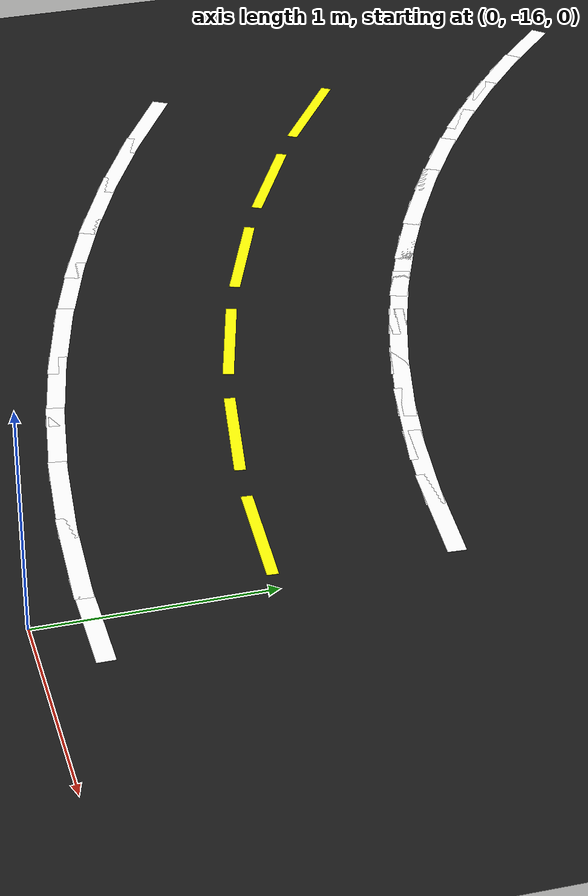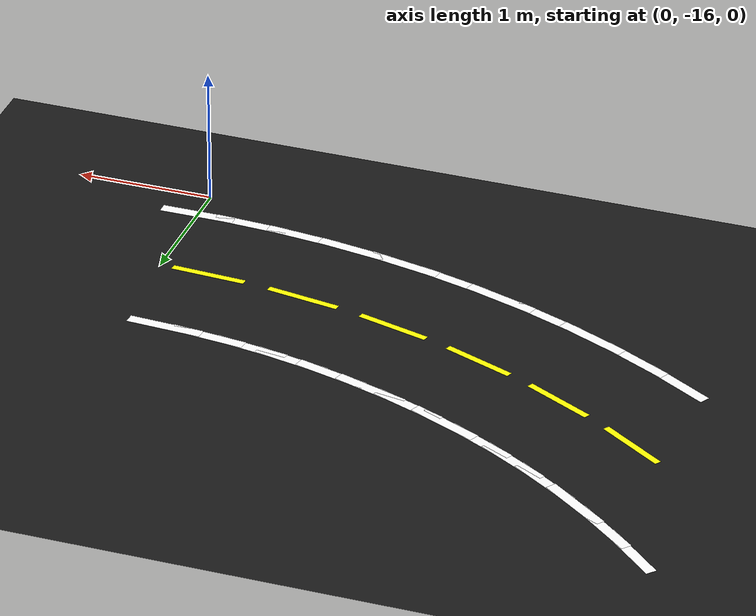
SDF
<sdf version="1.6">
 <world name="lane_world">
  <model name="ground">
   <static>true</static>
   <link name="link">
    <visual name="v">
     <geometry><plane><normal>0 0 1</normal><size>80 80</size></plane></geometry>
     <material><ambient>0.10 0.10 0.10 1</ambient><diffuse>0.10 0.10 0.10 1</diffuse></material>
    </visual>
    <collision name="c"><geometry><plane><normal>0 0 1</normal><size>80 80</size></plane></geometry></collision>
   </link>
  </model>
  <model name="seg_0447">
   <static>true</static>
   <pose>0.0000 -15.7500 0.002 0 0 0.0000</pose>
   <link name="link">
    <visual name="v">
     <geometry><box><size>0.550 0.080 0.0020</size></box></geometry>
     <material><ambient>1 1 1 1</ambient><diffuse>1 1 1 1</diffuse></material>
    </visual>
   </link>
  </model>
  <model name="seg_0448">
   <static>true</static>
   <pose>-0.3298 -14.2413 0.002 0 0 -0.0528</pose>
   <link name="link">
    <visual name="v">
     <geometry><box><size>0.550 0.080 0.0020</size></box></geometry>
     <material><ambient>1 1 1 1</ambient><diffuse>1 1 1 1</diffuse></material>
    </visual>
   </link>
  </model>
  <model name="seg_0449">
   <static>true</static>
   <pose>-0.4090 -15.7392 0.002 0 0 -0.0528</pose>
   <link name="link">
    <visual name="v">
     <geometry><box><size>0.550 0.080 0.0020</size></box></geometry>
     <material><ambient>1 1 1 1</ambient><diffuse>1 1 1 1</diffuse></material>
    </visual>
   </link>
  </model>
  <model name="seg_0450">
   <static>true</static>
   <pose>-0.3694 -14.9902 0.002 0 0 -0.0528</pose>
   <link name="link">
    <visual name="v">
     <geometry><box><size>0.550 0.05 0.0020</size></box></geometry>
     <material><ambient>1 1 0 1</ambient><diffuse>1 1 0 1</diffuse></material>
    </visual>
   </link>
  </model>
  <model name="seg_0451">
   <static>true</static>
   <pose>-0.6588 -14.2152 0.002 0 0 -0.1056</pose>
   <link name="link">
    <visual name="v">
     <geometry><box><size>0.550 0.080 0.0020</size></box></geometry>
     <material><ambient>1 1 1 1</ambient><diffuse>1 1 1 1</diffuse></material>
    </visual>
   </link>
  </model>
  <model name="seg_0452">
   <static>true</static>
   <pose>-0.8169 -15.7068 0.002 0 0 -0.1056</pose>
   <link name="link">
    <visual name="v">
     <geometry><box><size>0.550 0.080 0.0020</size></box></geometry>
     <material><ambient>1 1 1 1</ambient><diffuse>1 1 1 1</diffuse></material>
    </visual>
   </link>
  </model>
  <model name="seg_0453">
   <static>true</static>
   <pose>-0.9859 -14.1718 0.002 0 0 -0.1584</pose>
   <link name="link">
    <visual name="v">
     <geometry><box><size>0.550 0.080 0.0020</size></box></geometry>
     <material><ambient>1 1 1 1</ambient><diffuse>1 1 1 1</diffuse></material>
    </visual>
   </link>
  </model>
  <model name="seg_0454">
   <static>true</static>
   <pose>-1.2225 -15.6530 0.002 0 0 -0.1584</pose>
   <link name="link">
    <visual name="v">
     <geometry><box><size>0.550 0.080 0.0020</size></box></geometry>
     <material><ambient>1 1 1 1</ambient><diffuse>1 1 1 1</diffuse></material>
    </visual>
   </link>
  </model>
  <model name="seg_0455">
   <static>true</static>
   <pose>-1.1042 -14.9124 0.002 0 0 -0.1584</pose>
   <link name="link">
    <visual name="v">
     <geometry><box><size>0.550 0.05 0.0020</size></box></geometry>
     <material><ambient>1 1 0 1</ambient><diffuse>1 1 0 1</diffuse></material>
    </visual>
   </link>
  </model>
  <model name="seg_0456">
   <static>true</static>
   <pose>-1.3102 -14.1111 0.002 0 0 -0.2112</pose>
   <link name="link">
    <visual name="v">
     <geometry><box><size>0.550 0.080 0.0020</size></box></geometry>
     <material><ambient>1 1 1 1</ambient><diffuse>1 1 1 1</diffuse></material>
    </visual>
   </link>
  </model>
  <model name="seg_0457">
   <static>true</static>
   <pose>-1.6247 -15.5778 0.002 0 0 -0.2112</pose>
   <link name="link">
    <visual name="v">
     <geometry><box><size>0.550 0.080 0.0020</size></box></geometry>
     <material><ambient>1 1 1 1</ambient><diffuse>1 1 1 1</diffuse></material>
    </visual>
   </link>
  </model>
  <model name="seg_0458">
   <static>true</static>
   <pose>-1.6309 -14.0335 0.002 0 0 -0.2640</pose>
   <link name="link">
    <visual name="v">
     <geometry><box><size>0.550 0.080 0.0020</size></box></geometry>
     <material><ambient>1 1 1 1</ambient><diffuse>1 1 1 1</diffuse></material>
    </visual>
   </link>
  </model>
  <model name="seg_0459">
   <static>true</static>
   <pose>-2.0223 -15.4815 0.002 0 0 -0.2640</pose>
   <link name="link">
    <visual name="v">
     <geometry><box><size>0.550 0.080 0.0020</size></box></geometry>
     <material><ambient>1 1 1 1</ambient><diffuse>1 1 1 1</diffuse></material>
    </visual>
   </link>
  </model>
  <model name="seg_0460">
   <static>true</static>
   <pose>-1.8266 -14.7575 0.002 0 0 -0.2640</pose>
   <link name="link">
    <visual name="v">
     <geometry><box><size>0.550 0.05 0.0020</size></box></geometry>
     <material><ambient>1 1 0 1</ambient><diffuse>1 1 0 1</diffuse></material>
    </visual>
   </link>
  </model>
  <model name="seg_0461">
   <static>true</static>
   <pose>-1.9470 -13.9390 0.002 0 0 -0.3168</pose>
   <link name="link">
    <visual name="v">
     <geometry><box><size>0.550 0.080 0.0020</size></box></geometry>
     <material><ambient>1 1 1 1</ambient><diffuse>1 1 1 1</diffuse></material>
    </visual>
   </link>
  </model>
  <model name="seg_0462">
   <static>true</static>
   <pose>-2.4143 -15.3643 0.002 0 0 -0.3168</pose>
   <link name="link">
    <visual name="v">
     <geometry><box><size>0.550 0.080 0.0020</size></box></geometry>
     <material><ambient>1 1 1 1</ambient><diffuse>1 1 1 1</diffuse></material>
    </visual>
   </link>
  </model>
  <model name="seg_0463">
   <static>true</static>
   <pose>-2.2578 -13.8280 0.002 0 0 -0.3696</pose>
   <link name="link">
    <visual name="v">
     <geometry><box><size>0.550 0.080 0.0020</size></box></geometry>
     <material><ambient>1 1 1 1</ambient><diffuse>1 1 1 1</diffuse></material>
    </visual>
   </link>
  </model>
  <model name="seg_0464">
   <static>true</static>
   <pose>-2.7996 -15.2267 0.002 0 0 -0.3696</pose>
   <link name="link">
    <visual name="v">
     <geometry><box><size>0.550 0.080 0.0020</size></box></geometry>
     <material><ambient>1 1 1 1</ambient><diffuse>1 1 1 1</diffuse></material>
    </visual>
   </link>
  </model>
  <model name="seg_0465">
   <static>true</static>
   <pose>-2.5287 -14.5273 0.002 0 0 -0.3696</pose>
   <link name="link">
    <visual name="v">
     <geometry><box><size>0.550 0.05 0.0020</size></box></geometry>
     <material><ambient>1 1 0 1</ambient><diffuse>1 1 0 1</diffuse></material>
    </visual>
   </link>
  </model>
  <model name="seg_0466">
   <static>true</static>
   <pose>-2.5622 -13.7007 0.002 0 0 -0.4224</pose>
   <link name="link">
    <visual name="v">
     <geometry><box><size>0.550 0.080 0.0020</size></box></geometry>
     <material><ambient>1 1 1 1</ambient><diffuse>1 1 1 1</diffuse></material>
    </visual>
   </link>
  </model>
  <model name="seg_0467">
   <static>true</static>
   <pose>-3.1771 -15.0688 0.002 0 0 -0.4224</pose>
   <link name="link">
    <visual name="v">
     <geometry><box><size>0.550 0.080 0.0020</size></box></geometry>
     <material><ambient>1 1 1 1</ambient><diffuse>1 1 1 1</diffuse></material>
    </visual>
   </link>
  </model>
  <model name="seg_0468">
   <static>true</static>
   <pose>-2.8595 -13.5575 0.002 0 0 -0.4752</pose>
   <link name="link">
    <visual name="v">
     <geometry><box><size>0.550 0.080 0.0020</size></box></geometry>
     <material><ambient>1 1 1 1</ambient><diffuse>1 1 1 1</diffuse></material>
    </visual>
   </link>
  </model>
  <model name="seg_0469">
   <static>true</static>
   <pose>-3.5457 -14.8913 0.002 0 0 -0.4752</pose>
   <link name="link">
    <visual name="v">
     <geometry><box><size>0.550 0.080 0.0020</size></box></geometry>
     <material><ambient>1 1 1 1</ambient><diffuse>1 1 1 1</diffuse></material>
    </visual>
   </link>
  </model>
  <model name="seg_0470">
   <static>true</static>
   <pose>-3.2026 -14.2244 0.002 0 0 -0.4752</pose>
   <link name="link">
    <visual name="v">
     <geometry><box><size>0.550 0.05 0.0020</size></box></geometry>
     <material><ambient>1 1 0 1</ambient><diffuse>1 1 0 1</diffuse></material>
    </visual>
   </link>
  </model>
  <model name="seg_0471">
   <static>true</static>
   <pose>-3.1488 -13.3989 0.002 0 0 -0.5280</pose>
   <link name="link">
    <visual name="v">
     <geometry><box><size>0.550 0.080 0.0020</size></box></geometry>
     <material><ambient>1 1 1 1</ambient><diffuse>1 1 1 1</diffuse></material>
    </visual>
   </link>
  </model>
  <model name="seg_0472">
   <static>true</static>
   <pose>-3.9045 -14.6946 0.002 0 0 -0.5280</pose>
   <link name="link">
    <visual name="v">
     <geometry><box><size>0.550 0.080 0.0020</size></box></geometry>
     <material><ambient>1 1 1 1</ambient><diffuse>1 1 1 1</diffuse></material>
    </visual>
   </link>
  </model>
  <model name="seg_0473">
   <static>true</static>
   <pose>-3.4293 -13.2252 0.002 0 0 -0.5808</pose>
   <link name="link">
    <visual name="v">
     <geometry><box><size>0.550 0.080 0.0020</size></box></geometry>
     <material><ambient>1 1 1 1</ambient><diffuse>1 1 1 1</diffuse></material>
    </visual>
   </link>
  </model>
  <model name="seg_0475">
   <static>true</static>
   <pose>-3.8408 -13.8522 0.002 0 0 -0.5808</pose>
   <link name="link">
    <visual name="v">
     <geometry><box><size>0.550 0.05 0.0020</size></box></geometry>
     <material><ambient>1 1 0 1</ambient><diffuse>1 1 0 1</diffuse></material>
    </visual>
   </link>
  </model>
  <model name="seg_0476">
   <static>true</static>
   <pose>-3.7003 -13.0369 0.002 0 0 -0.6336</pose>
   <link name="link">
    <visual name="v">
     <geometry><box><size>0.550 0.080 0.0020</size></box></geometry>
     <material><ambient>1 1 1 1</ambient><diffuse>1 1 1 1</diffuse></material>
    </visual>
   </link>
  </model>
  <model name="seg_0478">
   <static>true</static>
   <pose>-3.9610 -12.8346 0.002 0 0 -0.6864</pose>
   <link name="link">
    <visual name="v">
     <geometry><box><size>0.550 0.080 0.0020</size></box></geometry>
     <material><ambient>1 1 1 1</ambient><diffuse>1 1 1 1</diffuse></material>
    </visual>
   </link>
  </model>
  <model name="seg_0481">
   <static>true</static>
   <pose>-4.2106 -12.6188 0.002 0 0 -0.7392</pose>
   <link name="link">
    <visual name="v">
     <geometry><box><size>0.550 0.080 0.0020</size></box></geometry>
     <material><ambient>1 1 1 1</ambient><diffuse>1 1 1 1</diffuse></material>
    </visual>
   </link>
  </model>
 </world>
</sdf>
